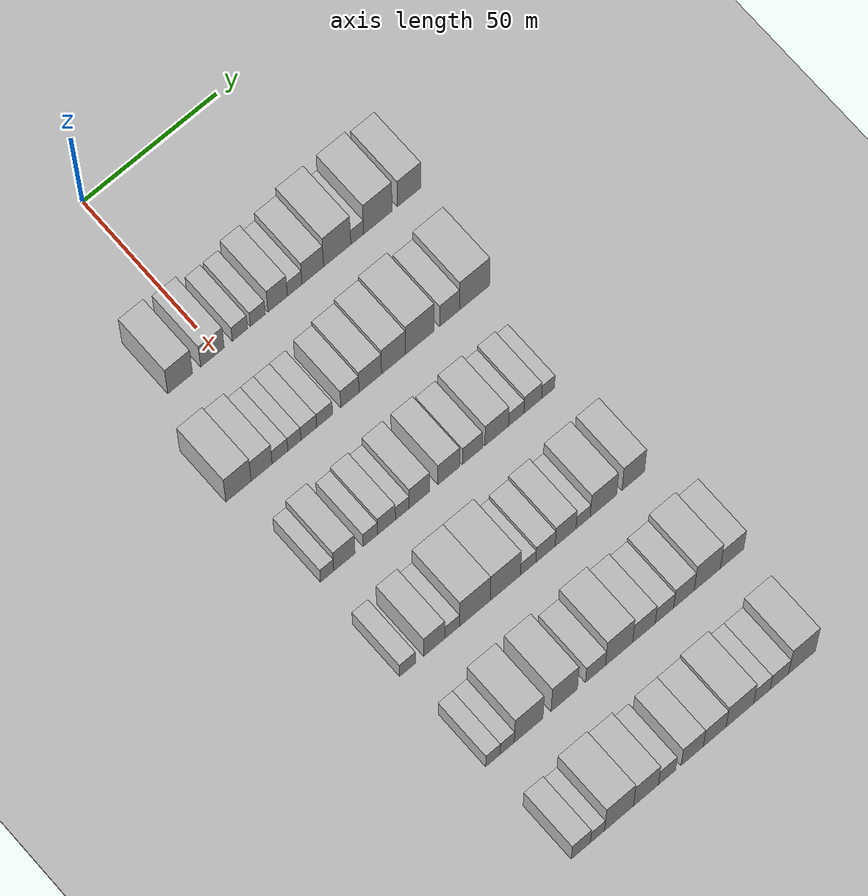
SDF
<sdf version="1.6">
 <world name="default">
  <include><name>ground_plane_1</name><uri>model://HANNAS_ground_plane</uri></include>
  <include>
   <name>ground_plane_2</name>
   <uri>model://HANNAS_ground_plane</uri>
   <pose>100 0 0  0 0 0</pose>
  </include>
  <model name="building_55">
   <static>1</static>
   <pose>50.0000 -14.3237 0 0.000000 0.000000 0.000000</pose>
   <link name="link">
    <pose>0 0 10.50 0 0 0</pose>
    <collision name="collision"><geometry><box><size>20.0000 9.1126 21.0000</size></box></geometry></collision>
    <visual name="visual">
     <cast_shadows>0</cast_shadows>
     <geometry><box><size>20.0000 9.1126 21.0000</size></box></geometry>
     <material>
      <script>
       <uri>model://HANNAS_wall/materials/scripts</uri>
       <uri>model://HANNAS_wall/materials/textures</uri>
       <name>vrc/HANNAS_wall</name>
      </script>
     </material>
    </visual>
   </link>
  </model>
  <model name="building_56">
   <static>1</static>
   <pose>50.0000 -2.4237 0 0.000000 0.000000 0.000000</pose>
   <link name="link">
    <pose>0 0 9.00 0 0 0</pose>
    <collision name="collision"><geometry><box><size>20.0000 8.6875 18.0000</size></box></geometry></collision>
    <visual name="visual">
     <cast_shadows>0</cast_shadows>
     <geometry><box><size>20.0000 8.6875 18.0000</size></box></geometry>
     <material>
      <script>
       <uri>model://HANNAS_wall/materials/scripts</uri>
       <uri>model://HANNAS_wall/materials/textures</uri>
       <name>vrc/HANNAS_wall</name>
      </script>
     </material>
    </visual>
   </link>
  </model>
  <model name="building_57">
   <static>1</static>
   <pose>50.0000 7.7474 0 0.000000 0.000000 0.000000</pose>
   <link name="link">
    <pose>0 0 6.00 0 0 0</pose>
    <collision name="collision"><geometry><box><size>20.0000 5.6546 12.0000</size></box></geometry></collision>
    <visual name="visual">
     <cast_shadows>0</cast_shadows>
     <geometry><box><size>20.0000 5.6546 12.0000</size></box></geometry>
     <material>
      <script>
       <uri>model://HANNAS_wall/materials/scripts</uri>
       <uri>model://HANNAS_wall/materials/textures</uri>
       <name>vrc/HANNAS_wall</name>
      </script>
     </material>
    </visual>
   </link>
  </model>
  <model name="building_58">
   <static>1</static>
   <pose>50.0000 14.3402 0 0.000000 0.000000 0.000000</pose>
   <link name="link">
    <pose>0 0 6.00 0 0 0</pose>
    <collision name="collision"><geometry><box><size>20.0000 5.5309 12.0000</size></box></geometry></collision>
    <visual name="visual">
     <cast_shadows>0</cast_shadows>
     <geometry><box><size>20.0000 5.5309 12.0000</size></box></geometry>
     <material>
      <script>
       <uri>model://HANNAS_wall/materials/scripts</uri>
       <uri>model://HANNAS_wall/materials/textures</uri>
       <name>vrc/HANNAS_wall</name>
      </script>
     </material>
    </visual>
   </link>
  </model>
  <model name="building_59">
   <static>1</static>
   <pose>50.0000 21.7077 0 0.000000 0.000000 0.000000</pose>
   <link name="link">
    <pose>0 0 9.00 0 0 0</pose>
    <collision name="collision"><geometry><box><size>20.0000 7.2041 18.0000</size></box></geometry></collision>
    <visual name="visual">
     <cast_shadows>0</cast_shadows>
     <geometry><box><size>20.0000 7.2041 18.0000</size></box></geometry>
     <material>
      <script>
       <uri>model://HANNAS_wall/materials/scripts</uri>
       <uri>model://HANNAS_wall/materials/textures</uri>
       <name>vrc/HANNAS_wall</name>
      </script>
     </material>
    </visual>
   </link>
  </model>
  <model name="building_60">
   <static>1</static>
   <pose>50.0000 28.0232 0 0.000000 0.000000 0.000000</pose>
   <link name="link">
    <pose>0 0 6.00 0 0 0</pose>
    <collision name="collision"><geometry><box><size>20.0000 5.4269 12.0000</size></box></geometry></collision>
    <visual name="visual">
     <cast_shadows>0</cast_shadows>
     <geometry><box><size>20.0000 5.4269 12.0000</size></box></geometry>
     <material>
      <script>
       <uri>model://HANNAS_wall/materials/scripts</uri>
       <uri>model://HANNAS_wall/materials/textures</uri>
       <name>vrc/HANNAS_wall</name>
      </script>
     </material>
    </visual>
   </link>
  </model>
  <model name="building_61">
   <static>1</static>
   <pose>50.0000 34.7626 0 0.000000 0.000000 0.000000</pose>
   <link name="link">
    <pose>0 0 9.00 0 0 0</pose>
    <collision name="collision"><geometry><box><size>20.0000 8.0518 18.0000</size></box></geometry></collision>
    <visual name="visual">
     <cast_shadows>0</cast_shadows>
     <geometry><box><size>20.0000 8.0518 18.0000</size></box></geometry>
     <material>
      <script>
       <uri>model://HANNAS_wall/materials/scripts</uri>
       <uri>model://HANNAS_wall/materials/textures</uri>
       <name>vrc/HANNAS_wall</name>
      </script>
     </material>
    </visual>
   </link>
  </model>
  <model name="building_62">
   <static>1</static>
   <pose>50.0000 43.8692 0 0.000000 0.000000 0.000000</pose>
   <link name="link">
    <pose>0 0 12.00 0 0 0</pose>
    <collision name="collision"><geometry><box><size>20.0000 10.1613 24.0000</size></box></geometry></collision>
    <visual name="visual">
     <cast_shadows>0</cast_shadows>
     <geometry><box><size>20.0000 10.1613 24.0000</size></box></geometry>
     <material>
      <script>
       <uri>model://HANNAS_wall/materials/scripts</uri>
       <uri>model://HANNAS_wall/materials/textures</uri>
       <name>vrc/HANNAS_wall</name>
      </script>
     </material>
    </visual>
   </link>
  </model>
  <model name="building_63">
   <static>1</static>
   <pose>50.0000 51.3525 0 0.000000 0.000000 0.000000</pose>
   <link name="link">
    <pose>0 0 6.00 0 0 0</pose>
    <collision name="collision"><geometry><box><size>20.0000 4.8053 12.0000</size></box></geometry></collision>
    <visual name="visual">
     <cast_shadows>0</cast_shadows>
     <geometry><box><size>20.0000 4.8053 12.0000</size></box></geometry>
     <material>
      <script>
       <uri>model://HANNAS_wall/materials/scripts</uri>
       <uri>model://HANNAS_wall/materials/textures</uri>
       <name>vrc/HANNAS_wall</name>
      </script>
     </material>
    </visual>
   </link>
  </model>
  <model name="building_64">
   <static>1</static>
   <pose>50.0000 59.0838 0 0.000000 0.000000 0.000000</pose>
   <link name="link">
    <pose>0 0 12.00 0 0 0</pose>
    <collision name="collision"><geometry><box><size>20.0000 10.6574 24.0000</size></box></geometry></collision>
    <visual name="visual">
     <cast_shadows>0</cast_shadows>
     <geometry><box><size>20.0000 10.6574 24.0000</size></box></geometry>
     <material>
      <script>
       <uri>model://HANNAS_wall/materials/scripts</uri>
       <uri>model://HANNAS_wall/materials/textures</uri>
       <name>vrc/HANNAS_wall</name>
      </script>
     </material>
    </visual>
   </link>
  </model>
  <model name="building_65">
   <static>1</static>
   <pose>50.0000 70.8415 0 0.000000 0.000000 0.000000</pose>
   <link name="link">
    <pose>0 0 10.50 0 0 0</pose>
    <collision name="collision"><geometry><box><size>20.0000 8.8580 21.0000</size></box></geometry></collision>
    <visual name="visual">
     <cast_shadows>0</cast_shadows>
     <geometry><box><size>20.0000 8.8580 21.0000</size></box></geometry>
     <material>
      <script>
       <uri>model://HANNAS_wall/materials/scripts</uri>
       <uri>model://HANNAS_wall/materials/textures</uri>
       <name>vrc/HANNAS_wall</name>
      </script>
     </material>
    </visual>
   </link>
  </model>
  <model name="building_180">
   <static>1</static>
   <pose>85.0000 -22.5169 0 0.000000 0.000000 0.000000</pose>
   <link name="link">
    <pose>0 0 10.50 0 0 0</pose>
    <collision name="collision"><geometry><box><size>20.0000 9.2628 21.0000</size></box></geometry></collision>
    <visual name="visual">
     <cast_shadows>0</cast_shadows>
     <geometry><box><size>20.0000 9.2628 21.0000</size></box></geometry>
     <material>
      <script>
       <uri>model://HANNAS_wall/materials/scripts</uri>
       <uri>model://HANNAS_wall/materials/textures</uri>
       <name>vrc/HANNAS_wall</name>
      </script>
     </material>
    </visual>
   </link>
  </model>
  <model name="building_181">
   <static>1</static>
   <pose>85.0000 -14.0218 0 0.000000 0.000000 0.000000</pose>
   <link name="link">
    <pose>0 0 9.00 0 0 0</pose>
    <collision name="collision"><geometry><box><size>20.0000 7.7274 18.0000</size></box></geometry></collision>
    <visual name="visual">
     <cast_shadows>0</cast_shadows>
     <geometry><box><size>20.0000 7.7274 18.0000</size></box></geometry>
     <material>
      <script>
       <uri>model://HANNAS_wall/materials/scripts</uri>
       <uri>model://HANNAS_wall/materials/textures</uri>
       <name>vrc/HANNAS_wall</name>
      </script>
     </material>
    </visual>
   </link>
  </model>
  <model name="building_182">
   <static>1</static>
   <pose>85.0000 -7.2518 0 0.000000 0.000000 0.000000</pose>
   <link name="link">
    <pose>0 0 6.00 0 0 0</pose>
    <collision name="collision"><geometry><box><size>20.0000 5.8126 12.0000</size></box></geometry></collision>
    <visual name="visual">
     <cast_shadows>0</cast_shadows>
     <geometry><box><size>20.0000 5.8126 12.0000</size></box></geometry>
     <material>
      <script>
       <uri>model://HANNAS_wall/materials/scripts</uri>
       <uri>model://HANNAS_wall/materials/textures</uri>
       <name>vrc/HANNAS_wall</name>
      </script>
     </material>
    </visual>
   </link>
  </model>
  <model name="building_183">
   <static>1</static>
   <pose>85.0000 -1.9382 0 0.000000 0.000000 0.000000</pose>
   <link name="link">
    <pose>0 0 6.00 0 0 0</pose>
    <collision name="collision"><geometry><box><size>20.0000 4.8145 12.0000</size></box></geometry></collision>
    <visual name="visual">
     <cast_shadows>0</cast_shadows>
     <geometry><box><size>20.0000 4.8145 12.0000</size></box></geometry>
     <material>
      <script>
       <uri>model://HANNAS_wall/materials/scripts</uri>
       <uri>model://HANNAS_wall/materials/textures</uri>
       <name>vrc/HANNAS_wall</name>
      </script>
     </material>
    </visual>
   </link>
  </model>
  <model name="building_184">
   <static>1</static>
   <pose>85.0000 3.3600 0 0.000000 0.000000 0.000000</pose>
   <link name="link">
    <pose>0 0 6.00 0 0 0</pose>
    <collision name="collision"><geometry><box><size>20.0000 5.7819 12.0000</size></box></geometry></collision>
    <visual name="visual">
     <cast_shadows>0</cast_shadows>
     <geometry><box><size>20.0000 5.7819 12.0000</size></box></geometry>
     <material>
      <script>
       <uri>model://HANNAS_wall/materials/scripts</uri>
       <uri>model://HANNAS_wall/materials/textures</uri>
       <name>vrc/HANNAS_wall</name>
      </script>
     </material>
    </visual>
   </link>
  </model>
  <model name="building_185">
   <static>1</static>
   <pose>85.0000 9.1967 0 0.000000 0.000000 0.000000</pose>
   <link name="link">
    <pose>0 0 6.00 0 0 0</pose>
    <collision name="collision"><geometry><box><size>20.0000 5.8915 12.0000</size></box></geometry></collision>
    <visual name="visual">
     <cast_shadows>0</cast_shadows>
     <geometry><box><size>20.0000 5.8915 12.0000</size></box></geometry>
     <material>
      <script>
       <uri>model://HANNAS_wall/materials/scripts</uri>
       <uri>model://HANNAS_wall/materials/textures</uri>
       <name>vrc/HANNAS_wall</name>
      </script>
     </material>
    </visual>
   </link>
  </model>
  <model name="building_186">
   <static>1</static>
   <pose>85.0000 18.5399 0 0.000000 0.000000 0.000000</pose>
   <link name="link">
    <pose>0 0 7.50 0 0 0</pose>
    <collision name="collision"><geometry><box><size>20.0000 6.7949 15.0000</size></box></geometry></collision>
    <visual name="visual">
     <cast_shadows>0</cast_shadows>
     <geometry><box><size>20.0000 6.7949 15.0000</size></box></geometry>
     <material>
      <script>
       <uri>model://HANNAS_wall/materials/scripts</uri>
       <uri>model://HANNAS_wall/materials/textures</uri>
       <name>vrc/HANNAS_wall</name>
      </script>
     </material>
    </visual>
   </link>
  </model>
  <model name="building_187">
   <static>1</static>
   <pose>85.0000 26.1134 0 0.000000 0.000000 0.000000</pose>
   <link name="link">
    <pose>0 0 9.00 0 0 0</pose>
    <collision name="collision"><geometry><box><size>20.0000 8.3521 18.0000</size></box></geometry></collision>
    <visual name="visual">
     <cast_shadows>0</cast_shadows>
     <geometry><box><size>20.0000 8.3521 18.0000</size></box></geometry>
     <material>
      <script>
       <uri>model://HANNAS_wall/materials/scripts</uri>
       <uri>model://HANNAS_wall/materials/textures</uri>
       <name>vrc/HANNAS_wall</name>
      </script>
     </material>
    </visual>
   </link>
  </model>
  <model name="building_188">
   <static>1</static>
   <pose>85.0000 34.7347 0 0.000000 0.000000 0.000000</pose>
   <link name="link">
    <pose>0 0 10.50 0 0 0</pose>
    <collision name="collision"><geometry><box><size>20.0000 8.8904 21.0000</size></box></geometry></collision>
    <visual name="visual">
     <cast_shadows>0</cast_shadows>
     <geometry><box><size>20.0000 8.8904 21.0000</size></box></geometry>
     <material>
      <script>
       <uri>model://HANNAS_wall/materials/scripts</uri>
       <uri>model://HANNAS_wall/materials/textures</uri>
       <name>vrc/HANNAS_wall</name>
      </script>
     </material>
    </visual>
   </link>
  </model>
  <model name="building_189">
   <static>1</static>
   <pose>85.0000 44.5310 0 0.000000 0.000000 0.000000</pose>
   <link name="link">
    <pose>0 0 12.00 0 0 0</pose>
    <collision name="collision"><geometry><box><size>20.0000 10.7021 24.0000</size></box></geometry></collision>
    <visual name="visual">
     <cast_shadows>0</cast_shadows>
     <geometry><box><size>20.0000 10.7021 24.0000</size></box></geometry>
     <material>
      <script>
       <uri>model://HANNAS_wall/materials/scripts</uri>
       <uri>model://HANNAS_wall/materials/textures</uri>
       <name>vrc/HANNAS_wall</name>
      </script>
     </material>
    </visual>
   </link>
  </model>
  <model name="building_190">
   <static>1</static>
   <pose>85.0000 55.5801 0 0.000000 0.000000 0.000000</pose>
   <link name="link">
    <pose>0 0 9.00 0 0 0</pose>
    <collision name="collision"><geometry><box><size>20.0000 7.3961 18.0000</size></box></geometry></collision>
    <visual name="visual">
     <cast_shadows>0</cast_shadows>
     <geometry><box><size>20.0000 7.3961 18.0000</size></box></geometry>
     <material>
      <script>
       <uri>model://HANNAS_wall/materials/scripts</uri>
       <uri>model://HANNAS_wall/materials/textures</uri>
       <name>vrc/HANNAS_wall</name>
      </script>
     </material>
    </visual>
   </link>
  </model>
  <model name="building_191">
   <static>1</static>
   <pose>85.0000 64.9095 0 0.000000 0.000000 0.000000</pose>
   <link name="link">
    <pose>0 0 12.00 0 0 0</pose>
    <collision name="collision"><geometry><box><size>20.0000 11.2628 24.0000</size></box></geometry></collision>
    <visual name="visual">
     <cast_shadows>0</cast_shadows>
     <geometry><box><size>20.0000 11.2628 24.0000</size></box></geometry>
     <material>
      <script>
       <uri>model://HANNAS_wall/materials/scripts</uri>
       <uri>model://HANNAS_wall/materials/textures</uri>
       <name>vrc/HANNAS_wall</name>
      </script>
     </material>
    </visual>
   </link>
  </model>
  <model name="building_308">
   <static>1</static>
   <pose>120.0000 -19.8995 0 0.000000 0.000000 0.000000</pose>
   <link name="link">
    <pose>0 0 6.00 0 0 0</pose>
    <collision name="collision"><geometry><box><size>20.0000 4.8841 12.0000</size></box></geometry></collision>
    <visual name="visual">
     <cast_shadows>0</cast_shadows>
     <geometry><box><size>20.0000 4.8841 12.0000</size></box></geometry>
     <material>
      <script>
       <uri>model://HANNAS_wall/materials/scripts</uri>
       <uri>model://HANNAS_wall/materials/textures</uri>
       <name>vrc/HANNAS_wall</name>
      </script>
     </material>
    </visual>
   </link>
  </model>
  <model name="building_309">
   <static>1</static>
   <pose>120.0000 -13.5665 0 0.000000 0.000000 0.000000</pose>
   <link name="link">
    <pose>0 0 9.00 0 0 0</pose>
    <collision name="collision"><geometry><box><size>20.0000 7.7819 18.0000</size></box></geometry></collision>
    <visual name="visual">
     <cast_shadows>0</cast_shadows>
     <geometry><box><size>20.0000 7.7819 18.0000</size></box></geometry>
     <material>
      <script>
       <uri>model://HANNAS_wall/materials/scripts</uri>
       <uri>model://HANNAS_wall/materials/textures</uri>
       <name>vrc/HANNAS_wall</name>
      </script>
     </material>
    </visual>
   </link>
  </model>
  <model name="building_310">
   <static>1</static>
   <pose>120.0000 -4.0090 0 0.000000 0.000000 0.000000</pose>
   <link name="link">
    <pose>0 0 6.00 0 0 0</pose>
    <collision name="collision"><geometry><box><size>20.0000 5.3330 12.0000</size></box></geometry></collision>
    <visual name="visual">
     <cast_shadows>0</cast_shadows>
     <geometry><box><size>20.0000 5.3330 12.0000</size></box></geometry>
     <material>
      <script>
       <uri>model://HANNAS_wall/materials/scripts</uri>
       <uri>model://HANNAS_wall/materials/textures</uri>
       <name>vrc/HANNAS_wall</name>
      </script>
     </material>
    </visual>
   </link>
  </model>
  <model name="building_311">
   <static>1</static>
   <pose>120.0000 1.9517 0 0.000000 0.000000 0.000000</pose>
   <link name="link">
    <pose>0 0 7.50 0 0 0</pose>
    <collision name="collision"><geometry><box><size>20.0000 6.5883 15.0000</size></box></geometry></collision>
    <visual name="visual">
     <cast_shadows>0</cast_shadows>
     <geometry><box><size>20.0000 6.5883 15.0000</size></box></geometry>
     <material>
      <script>
       <uri>model://HANNAS_wall/materials/scripts</uri>
       <uri>model://HANNAS_wall/materials/textures</uri>
       <name>vrc/HANNAS_wall</name>
      </script>
     </material>
    </visual>
   </link>
  </model>
  <model name="building_312">
   <static>1</static>
   <pose>120.0000 7.7840 0 0.000000 0.000000 0.000000</pose>
   <link name="link">
    <pose>0 0 6.00 0 0 0</pose>
    <collision name="collision"><geometry><box><size>20.0000 5.0762 12.0000</size></box></geometry></collision>
    <visual name="visual">
     <cast_shadows>0</cast_shadows>
     <geometry><box><size>20.0000 5.0762 12.0000</size></box></geometry>
     <material>
      <script>
       <uri>model://HANNAS_wall/materials/scripts</uri>
       <uri>model://HANNAS_wall/materials/textures</uri>
       <name>vrc/HANNAS_wall</name>
      </script>
     </material>
    </visual>
   </link>
  </model>
  <model name="building_313">
   <static>1</static>
   <pose>120.0000 14.1157 0 0.000000 0.000000 0.000000</pose>
   <link name="link">
    <pose>0 0 9.00 0 0 0</pose>
    <collision name="collision"><geometry><box><size>20.0000 7.5874 18.0000</size></box></geometry></collision>
    <visual name="visual">
     <cast_shadows>0</cast_shadows>
     <geometry><box><size>20.0000 7.5874 18.0000</size></box></geometry>
     <material>
      <script>
       <uri>model://HANNAS_wall/materials/scripts</uri>
       <uri>model://HANNAS_wall/materials/textures</uri>
       <name>vrc/HANNAS_wall</name>
      </script>
     </material>
    </visual>
   </link>
  </model>
  <model name="building_314">
   <static>1</static>
   <pose>120.0000 24.9161 0 0.000000 0.000000 0.000000</pose>
   <link name="link">
    <pose>0 0 9.00 0 0 0</pose>
    <collision name="collision"><geometry><box><size>20.0000 8.0134 18.0000</size></box></geometry></collision>
    <visual name="visual">
     <cast_shadows>0</cast_shadows>
     <geometry><box><size>20.0000 8.0134 18.0000</size></box></geometry>
     <material>
      <script>
       <uri>model://HANNAS_wall/materials/scripts</uri>
       <uri>model://HANNAS_wall/materials/textures</uri>
       <name>vrc/HANNAS_wall</name>
      </script>
     </material>
    </visual>
   </link>
  </model>
  <model name="building_315">
   <static>1</static>
   <pose>120.0000 33.5996 0 0.000000 0.000000 0.000000</pose>
   <link name="link">
    <pose>0 0 7.50 0 0 0</pose>
    <collision name="collision"><geometry><box><size>20.0000 7.3537 15.0000</size></box></geometry></collision>
    <visual name="visual">
     <cast_shadows>0</cast_shadows>
     <geometry><box><size>20.0000 7.3537 15.0000</size></box></geometry>
     <material>
      <script>
       <uri>model://HANNAS_wall/materials/scripts</uri>
       <uri>model://HANNAS_wall/materials/textures</uri>
       <name>vrc/HANNAS_wall</name>
      </script>
     </material>
    </visual>
   </link>
  </model>
  <model name="building_316">
   <static>1</static>
   <pose>120.0000 42.6816 0 0.000000 0.000000 0.000000</pose>
   <link name="link">
    <pose>0 0 9.00 0 0 0</pose>
    <collision name="collision"><geometry><box><size>20.0000 8.8103 18.0000</size></box></geometry></collision>
    <visual name="visual">
     <cast_shadows>0</cast_shadows>
     <geometry><box><size>20.0000 8.8103 18.0000</size></box></geometry>
     <material>
      <script>
       <uri>model://HANNAS_wall/materials/scripts</uri>
       <uri>model://HANNAS_wall/materials/textures</uri>
       <name>vrc/HANNAS_wall</name>
      </script>
     </material>
    </visual>
   </link>
  </model>
  <model name="building_317">
   <static>1</static>
   <pose>120.0000 49.9662 0 0.000000 0.000000 0.000000</pose>
   <link name="link">
    <pose>0 0 6.00 0 0 0</pose>
    <collision name="collision"><geometry><box><size>20.0000 5.7590 12.0000</size></box></geometry></collision>
    <visual name="visual">
     <cast_shadows>0</cast_shadows>
     <geometry><box><size>20.0000 5.7590 12.0000</size></box></geometry>
     <material>
      <script>
       <uri>model://HANNAS_wall/materials/scripts</uri>
       <uri>model://HANNAS_wall/materials/textures</uri>
       <name>vrc/HANNAS_wall</name>
      </script>
     </material>
    </visual>
   </link>
  </model>
  <model name="building_318">
   <static>1</static>
   <pose>120.0000 56.1377 0 0.000000 0.000000 0.000000</pose>
   <link name="link">
    <pose>0 0 7.50 0 0 0</pose>
    <collision name="collision"><geometry><box><size>20.0000 6.5839 15.0000</size></box></geometry></collision>
    <visual name="visual">
     <cast_shadows>0</cast_shadows>
     <geometry><box><size>20.0000 6.5839 15.0000</size></box></geometry>
     <material>
      <script>
       <uri>model://HANNAS_wall/materials/scripts</uri>
       <uri>model://HANNAS_wall/materials/textures</uri>
       <name>vrc/HANNAS_wall</name>
      </script>
     </material>
    </visual>
   </link>
  </model>
  <model name="building_319">
   <static>1</static>
   <pose>120.0000 61.8437 0 0.000000 0.000000 0.000000</pose>
   <link name="link">
    <pose>0 0 6.00 0 0 0</pose>
    <collision name="collision"><geometry><box><size>20.0000 4.8282 12.0000</size></box></geometry></collision>
    <visual name="visual">
     <cast_shadows>0</cast_shadows>
     <geometry><box><size>20.0000 4.8282 12.0000</size></box></geometry>
     <material>
      <script>
       <uri>model://HANNAS_wall/materials/scripts</uri>
       <uri>model://HANNAS_wall/materials/textures</uri>
       <name>vrc/HANNAS_wall</name>
      </script>
     </material>
    </visual>
   </link>
  </model>
  <model name="building_430">
   <static>1</static>
   <pose>155.0000 -20.5904 0 0.000000 0.000000 0.000000</pose>
   <link name="link">
    <pose>0 0 6.00 0 0 0</pose>
    <collision name="collision"><geometry><box><size>20.0000 5.8227 12.0000</size></box></geometry></collision>
    <visual name="visual">
     <cast_shadows>0</cast_shadows>
     <geometry><box><size>20.0000 5.8227 12.0000</size></box></geometry>
     <material>
      <script>
       <uri>model://HANNAS_wall/materials/scripts</uri>
       <uri>model://HANNAS_wall/materials/textures</uri>
       <name>vrc/HANNAS_wall</name>
      </script>
     </material>
    </visual>
   </link>
  </model>
  <model name="building_431">
   <static>1</static>
   <pose>155.0000 -10.8334 0 0.000000 0.000000 0.000000</pose>
   <link name="link">
    <pose>0 0 9.00 0 0 0</pose>
    <collision name="collision"><geometry><box><size>20.0000 7.6912 18.0000</size></box></geometry></collision>
    <visual name="visual">
     <cast_shadows>0</cast_shadows>
     <geometry><box><size>20.0000 7.6912 18.0000</size></box></geometry>
     <material>
      <script>
       <uri>model://HANNAS_wall/materials/scripts</uri>
       <uri>model://HANNAS_wall/materials/textures</uri>
       <name>vrc/HANNAS_wall</name>
      </script>
     </material>
    </visual>
   </link>
  </model>
  <model name="building_432">
   <static>1</static>
   <pose>155.0000 -4.2720 0 0.000000 0.000000 0.000000</pose>
   <link name="link">
    <pose>0 0 6.00 0 0 0</pose>
    <collision name="collision"><geometry><box><size>20.0000 5.4316 12.0000</size></box></geometry></collision>
    <visual name="visual">
     <cast_shadows>0</cast_shadows>
     <geometry><box><size>20.0000 5.4316 12.0000</size></box></geometry>
     <material>
      <script>
       <uri>model://HANNAS_wall/materials/scripts</uri>
       <uri>model://HANNAS_wall/materials/textures</uri>
       <name>vrc/HANNAS_wall</name>
      </script>
     </material>
    </visual>
   </link>
  </model>
  <model name="building_433">
   <static>1</static>
   <pose>155.0000 4.1044 0 0.000000 0.000000 0.000000</pose>
   <link name="link">
    <pose>0 0 12.00 0 0 0</pose>
    <collision name="collision"><geometry><box><size>20.0000 11.3212 24.0000</size></box></geometry></collision>
    <visual name="visual">
     <cast_shadows>0</cast_shadows>
     <geometry><box><size>20.0000 11.3212 24.0000</size></box></geometry>
     <material>
      <script>
       <uri>model://HANNAS_wall/materials/scripts</uri>
       <uri>model://HANNAS_wall/materials/textures</uri>
       <name>vrc/HANNAS_wall</name>
      </script>
     </material>
    </visual>
   </link>
  </model>
  <model name="building_434">
   <static>1</static>
   <pose>155.0000 15.3305 0 0.000000 0.000000 0.000000</pose>
   <link name="link">
    <pose>0 0 12.00 0 0 0</pose>
    <collision name="collision"><geometry><box><size>20.0000 11.1311 24.0000</size></box></geometry></collision>
    <visual name="visual">
     <cast_shadows>0</cast_shadows>
     <geometry><box><size>20.0000 11.1311 24.0000</size></box></geometry>
     <material>
      <script>
       <uri>model://HANNAS_wall/materials/scripts</uri>
       <uri>model://HANNAS_wall/materials/textures</uri>
       <name>vrc/HANNAS_wall</name>
      </script>
     </material>
    </visual>
   </link>
  </model>
  <model name="building_435">
   <static>1</static>
   <pose>155.0000 23.7311 0 0.000000 0.000000 0.000000</pose>
   <link name="link">
    <pose>0 0 6.00 0 0 0</pose>
    <collision name="collision"><geometry><box><size>20.0000 5.6700 12.0000</size></box></geometry></collision>
    <visual name="visual">
     <cast_shadows>0</cast_shadows>
     <geometry><box><size>20.0000 5.6700 12.0000</size></box></geometry>
     <material>
      <script>
       <uri>model://HANNAS_wall/materials/scripts</uri>
       <uri>model://HANNAS_wall/materials/textures</uri>
       <name>vrc/HANNAS_wall</name>
      </script>
     </material>
    </visual>
   </link>
  </model>
  <model name="building_436">
   <static>1</static>
   <pose>155.0000 30.1602 0 0.000000 0.000000 0.000000</pose>
   <link name="link">
    <pose>0 0 7.50 0 0 0</pose>
    <collision name="collision"><geometry><box><size>20.0000 7.1884 15.0000</size></box></geometry></collision>
    <visual name="visual">
     <cast_shadows>0</cast_shadows>
     <geometry><box><size>20.0000 7.1884 15.0000</size></box></geometry>
     <material>
      <script>
       <uri>model://HANNAS_wall/materials/scripts</uri>
       <uri>model://HANNAS_wall/materials/textures</uri>
       <name>vrc/HANNAS_wall</name>
      </script>
     </material>
    </visual>
   </link>
  </model>
  <model name="building_437">
   <static>1</static>
   <pose>155.0000 37.6051 0 0.000000 0.000000 0.000000</pose>
   <link name="link">
    <pose>0 0 9.00 0 0 0</pose>
    <collision name="collision"><geometry><box><size>20.0000 7.7013 18.0000</size></box></geometry></collision>
    <visual name="visual">
     <cast_shadows>0</cast_shadows>
     <geometry><box><size>20.0000 7.7013 18.0000</size></box></geometry>
     <material>
      <script>
       <uri>model://HANNAS_wall/materials/scripts</uri>
       <uri>model://HANNAS_wall/materials/textures</uri>
       <name>vrc/HANNAS_wall</name>
      </script>
     </material>
    </visual>
   </link>
  </model>
  <model name="building_438">
   <static>1</static>
   <pose>155.0000 44.1049 0 0.000000 0.000000 0.000000</pose>
   <link name="link">
    <pose>0 0 6.00 0 0 0</pose>
    <collision name="collision"><geometry><box><size>20.0000 5.2984 12.0000</size></box></geometry></collision>
    <visual name="visual">
     <cast_shadows>0</cast_shadows>
     <geometry><box><size>20.0000 5.2984 12.0000</size></box></geometry>
     <material>
      <script>
       <uri>model://HANNAS_wall/materials/scripts</uri>
       <uri>model://HANNAS_wall/materials/textures</uri>
       <name>vrc/HANNAS_wall</name>
      </script>
     </material>
    </visual>
   </link>
  </model>
  <model name="building_439">
   <static>1</static>
   <pose>155.0000 51.6730 0 0.000000 0.000000 0.000000</pose>
   <link name="link">
    <pose>0 0 10.50 0 0 0</pose>
    <collision name="collision"><geometry><box><size>20.0000 9.8377 21.0000</size></box></geometry></collision>
    <visual name="visual">
     <cast_shadows>0</cast_shadows>
     <geometry><box><size>20.0000 9.8377 21.0000</size></box></geometry>
     <material>
      <script>
       <uri>model://HANNAS_wall/materials/scripts</uri>
       <uri>model://HANNAS_wall/materials/textures</uri>
       <name>vrc/HANNAS_wall</name>
      </script>
     </material>
    </visual>
   </link>
  </model>
  <model name="building_440">
   <static>1</static>
   <pose>155.0000 62.7983 0 0.000000 0.000000 0.000000</pose>
   <link name="link">
    <pose>0 0 10.50 0 0 0</pose>
    <collision name="collision"><geometry><box><size>20.0000 8.4130 21.0000</size></box></geometry></collision>
    <visual name="visual">
     <cast_shadows>0</cast_shadows>
     <geometry><box><size>20.0000 8.4130 21.0000</size></box></geometry>
     <material>
      <script>
       <uri>model://HANNAS_wall/materials/scripts</uri>
       <uri>model://HANNAS_wall/materials/textures</uri>
       <name>vrc/HANNAS_wall</name>
      </script>
     </material>
    </visual>
   </link>
  </model>
  <model name="building_561">
   <static>1</static>
   <pose>190.0000 -19.8078 0 0.000000 0.000000 0.000000</pose>
   <link name="link">
    <pose>0 0 6.00 0 0 0</pose>
    <collision name="collision"><geometry><box><size>20.0000 5.3019 12.0000</size></box></geometry></collision>
    <visual name="visual">
     <cast_shadows>0</cast_shadows>
     <geometry><box><size>20.0000 5.3019 12.0000</size></box></geometry>
     <material>
      <script>
       <uri>model://HANNAS_wall/materials/scripts</uri>
       <uri>model://HANNAS_wall/materials/textures</uri>
       <name>vrc/HANNAS_wall</name>
      </script>
     </material>
    </visual>
   </link>
  </model>
  <model name="building_562">
   <static>1</static>
   <pose>190.0000 -14.5783 0 0.000000 0.000000 0.000000</pose>
   <link name="link">
    <pose>0 0 6.00 0 0 0</pose>
    <collision name="collision"><geometry><box><size>20.0000 5.1570 12.0000</size></box></geometry></collision>
    <visual name="visual">
     <cast_shadows>0</cast_shadows>
     <geometry><box><size>20.0000 5.1570 12.0000</size></box></geometry>
     <material>
      <script>
       <uri>model://HANNAS_wall/materials/scripts</uri>
       <uri>model://HANNAS_wall/materials/textures</uri>
       <name>vrc/HANNAS_wall</name>
      </script>
     </material>
    </visual>
   </link>
  </model>
  <model name="building_563">
   <static>1</static>
   <pose>190.0000 -6.7653 0 0.000000 0.000000 0.000000</pose>
   <link name="link">
    <pose>0 0 12.00 0 0 0</pose>
    <collision name="collision"><geometry><box><size>20.0000 10.4690 24.0000</size></box></geometry></collision>
    <visual name="visual">
     <cast_shadows>0</cast_shadows>
     <geometry><box><size>20.0000 10.4690 24.0000</size></box></geometry>
     <material>
      <script>
       <uri>model://HANNAS_wall/materials/scripts</uri>
       <uri>model://HANNAS_wall/materials/textures</uri>
       <name>vrc/HANNAS_wall</name>
      </script>
     </material>
    </visual>
   </link>
  </model>
  <model name="building_564">
   <static>1</static>
   <pose>190.0000 6.3127 0 0.000000 0.000000 0.000000</pose>
   <link name="link">
    <pose>0 0 12.00 0 0 0</pose>
    <collision name="collision"><geometry><box><size>20.0000 9.6870 24.0000</size></box></geometry></collision>
    <visual name="visual">
     <cast_shadows>0</cast_shadows>
     <geometry><box><size>20.0000 9.6870 24.0000</size></box></geometry>
     <material>
      <script>
       <uri>model://HANNAS_wall/materials/scripts</uri>
       <uri>model://HANNAS_wall/materials/textures</uri>
       <name>vrc/HANNAS_wall</name>
      </script>
     </material>
    </visual>
   </link>
  </model>
  <model name="building_565">
   <static>1</static>
   <pose>190.0000 17.8263 0 0.000000 0.000000 0.000000</pose>
   <link name="link">
    <pose>0 0 7.50 0 0 0</pose>
    <collision name="collision"><geometry><box><size>20.0000 7.3402 15.0000</size></box></geometry></collision>
    <visual name="visual">
     <cast_shadows>0</cast_shadows>
     <geometry><box><size>20.0000 7.3402 15.0000</size></box></geometry>
     <material>
      <script>
       <uri>model://HANNAS_wall/materials/scripts</uri>
       <uri>model://HANNAS_wall/materials/textures</uri>
       <name>vrc/HANNAS_wall</name>
      </script>
     </material>
    </visual>
   </link>
  </model>
  <model name="building_566">
   <static>1</static>
   <pose>190.0000 26.5116 0 0.000000 0.000000 0.000000</pose>
   <link name="link">
    <pose>0 0 12.00 0 0 0</pose>
    <collision name="collision"><geometry><box><size>20.0000 10.0303 24.0000</size></box></geometry></collision>
    <visual name="visual">
     <cast_shadows>0</cast_shadows>
     <geometry><box><size>20.0000 10.0303 24.0000</size></box></geometry>
     <material>
      <script>
       <uri>model://HANNAS_wall/materials/scripts</uri>
       <uri>model://HANNAS_wall/materials/textures</uri>
       <name>vrc/HANNAS_wall</name>
      </script>
     </material>
    </visual>
   </link>
  </model>
  <model name="building_567">
   <static>1</static>
   <pose>190.0000 35.7202 0 0.000000 0.000000 0.000000</pose>
   <link name="link">
    <pose>0 0 9.00 0 0 0</pose>
    <collision name="collision"><geometry><box><size>20.0000 8.3870 18.0000</size></box></geometry></collision>
    <visual name="visual">
     <cast_shadows>0</cast_shadows>
     <geometry><box><size>20.0000 8.3870 18.0000</size></box></geometry>
     <material>
      <script>
       <uri>model://HANNAS_wall/materials/scripts</uri>
       <uri>model://HANNAS_wall/materials/textures</uri>
       <name>vrc/HANNAS_wall</name>
      </script>
     </material>
    </visual>
   </link>
  </model>
  <model name="building_568">
   <static>1</static>
   <pose>190.0000 43.3230 0 0.000000 0.000000 0.000000</pose>
   <link name="link">
    <pose>0 0 7.50 0 0 0</pose>
    <collision name="collision"><geometry><box><size>20.0000 6.8186 15.0000</size></box></geometry></collision>
    <visual name="visual">
     <cast_shadows>0</cast_shadows>
     <geometry><box><size>20.0000 6.8186 15.0000</size></box></geometry>
     <material>
      <script>
       <uri>model://HANNAS_wall/materials/scripts</uri>
       <uri>model://HANNAS_wall/materials/textures</uri>
       <name>vrc/HANNAS_wall</name>
      </script>
     </material>
    </visual>
   </link>
  </model>
  <model name="building_569">
   <static>1</static>
   <pose>190.0000 50.5600 0 0.000000 0.000000 0.000000</pose>
   <link name="link">
    <pose>0 0 9.00 0 0 0</pose>
    <collision name="collision"><geometry><box><size>20.0000 7.6552 18.0000</size></box></geometry></collision>
    <visual name="visual">
     <cast_shadows>0</cast_shadows>
     <geometry><box><size>20.0000 7.6552 18.0000</size></box></geometry>
     <material>
      <script>
       <uri>model://HANNAS_wall/materials/scripts</uri>
       <uri>model://HANNAS_wall/materials/textures</uri>
       <name>vrc/HANNAS_wall</name>
      </script>
     </material>
    </visual>
   </link>
  </model>
  <model name="building_570">
   <static>1</static>
   <pose>190.0000 59.2563 0 0.000000 0.000000 0.000000</pose>
   <link name="link">
    <pose>0 0 12.00 0 0 0</pose>
    <collision name="collision"><geometry><box><size>20.0000 9.7374 24.0000</size></box></geometry></collision>
    <visual name="visual">
     <cast_shadows>0</cast_shadows>
     <geometry><box><size>20.0000 9.7374 24.0000</size></box></geometry>
     <material>
      <script>
       <uri>model://HANNAS_wall/materials/scripts</uri>
       <uri>model://HANNAS_wall/materials/textures</uri>
       <name>vrc/HANNAS_wall</name>
      </script>
     </material>
    </visual>
   </link>
  </model>
  <model name="building_571">
   <static>1</static>
   <pose>190.0000 68.4965 0 0.000000 0.000000 0.000000</pose>
   <link name="link">
    <pose>0 0 9.00 0 0 0</pose>
    <collision name="collision"><geometry><box><size>20.0000 8.7431 18.0000</size></box></geometry></collision>
    <visual name="visual">
     <cast_shadows>0</cast_shadows>
     <geometry><box><size>20.0000 8.7431 18.0000</size></box></geometry>
     <material>
      <script>
       <uri>model://HANNAS_wall/materials/scripts</uri>
       <uri>model://HANNAS_wall/materials/textures</uri>
       <name>vrc/HANNAS_wall</name>
      </script>
     </material>
    </visual>
   </link>
  </model>
  <model name="building_691">
   <static>1</static>
   <pose>225.0000 -18.4007 0 0.000000 0.000000 0.000000</pose>
   <link name="link">
    <pose>0 0 7.50 0 0 0</pose>
    <collision name="collision"><geometry><box><size>20.0000 7.0129 15.0000</size></box></geometry></collision>
    <visual name="visual">
     <cast_shadows>0</cast_shadows>
     <geometry><box><size>20.0000 7.0129 15.0000</size></box></geometry>
     <material>
      <script>
       <uri>model://HANNAS_wall/materials/scripts</uri>
       <uri>model://HANNAS_wall/materials/textures</uri>
       <name>vrc/HANNAS_wall</name>
      </script>
     </material>
    </visual>
   </link>
  </model>
  <model name="building_692">
   <static>1</static>
   <pose>225.0000 -12.3354 0 0.000000 0.000000 0.000000</pose>
   <link name="link">
    <pose>0 0 6.00 0 0 0</pose>
    <collision name="collision"><geometry><box><size>20.0000 5.1178 12.0000</size></box></geometry></collision>
    <visual name="visual">
     <cast_shadows>0</cast_shadows>
     <geometry><box><size>20.0000 5.1178 12.0000</size></box></geometry>
     <material>
      <script>
       <uri>model://HANNAS_wall/materials/scripts</uri>
       <uri>model://HANNAS_wall/materials/textures</uri>
       <name>vrc/HANNAS_wall</name>
      </script>
     </material>
    </visual>
   </link>
  </model>
  <model name="building_693">
   <static>1</static>
   <pose>225.0000 -4.4749 0 0.000000 0.000000 0.000000</pose>
   <link name="link">
    <pose>0 0 12.00 0 0 0</pose>
    <collision name="collision"><geometry><box><size>20.0000 10.6031 24.0000</size></box></geometry></collision>
    <visual name="visual">
     <cast_shadows>0</cast_shadows>
     <geometry><box><size>20.0000 10.6031 24.0000</size></box></geometry>
     <material>
      <script>
       <uri>model://HANNAS_wall/materials/scripts</uri>
       <uri>model://HANNAS_wall/materials/textures</uri>
       <name>vrc/HANNAS_wall</name>
      </script>
     </material>
    </visual>
   </link>
  </model>
  <model name="building_694">
   <static>1</static>
   <pose>225.0000 5.4077 0 0.000000 0.000000 0.000000</pose>
   <link name="link">
    <pose>0 0 10.50 0 0 0</pose>
    <collision name="collision"><geometry><box><size>20.0000 9.1621 21.0000</size></box></geometry></collision>
    <visual name="visual">
     <cast_shadows>0</cast_shadows>
     <geometry><box><size>20.0000 9.1621 21.0000</size></box></geometry>
     <material>
      <script>
       <uri>model://HANNAS_wall/materials/scripts</uri>
       <uri>model://HANNAS_wall/materials/textures</uri>
       <name>vrc/HANNAS_wall</name>
      </script>
     </material>
    </visual>
   </link>
  </model>
  <model name="building_695">
   <static>1</static>
   <pose>225.0000 13.1406 0 0.000000 0.000000 0.000000</pose>
   <link name="link">
    <pose>0 0 7.50 0 0 0</pose>
    <collision name="collision"><geometry><box><size>20.0000 6.3036 15.0000</size></box></geometry></collision>
    <visual name="visual">
     <cast_shadows>0</cast_shadows>
     <geometry><box><size>20.0000 6.3036 15.0000</size></box></geometry>
     <material>
      <script>
       <uri>model://HANNAS_wall/materials/scripts</uri>
       <uri>model://HANNAS_wall/materials/textures</uri>
       <name>vrc/HANNAS_wall</name>
      </script>
     </material>
    </visual>
   </link>
  </model>
  <model name="building_696">
   <static>1</static>
   <pose>225.0000 22.4176 0 0.000000 0.000000 0.000000</pose>
   <link name="link">
    <pose>0 0 9.00 0 0 0</pose>
    <collision name="collision"><geometry><box><size>20.0000 8.2504 18.0000</size></box></geometry></collision>
    <visual name="visual">
     <cast_shadows>0</cast_shadows>
     <geometry><box><size>20.0000 8.2504 18.0000</size></box></geometry>
     <material>
      <script>
       <uri>model://HANNAS_wall/materials/scripts</uri>
       <uri>model://HANNAS_wall/materials/textures</uri>
       <name>vrc/HANNAS_wall</name>
      </script>
     </material>
    </visual>
   </link>
  </model>
  <model name="building_697">
   <static>1</static>
   <pose>225.0000 30.7197 0 0.000000 0.000000 0.000000</pose>
   <link name="link">
    <pose>0 0 9.00 0 0 0</pose>
    <collision name="collision"><geometry><box><size>20.0000 8.3539 18.0000</size></box></geometry></collision>
    <visual name="visual">
     <cast_shadows>0</cast_shadows>
     <geometry><box><size>20.0000 8.3539 18.0000</size></box></geometry>
     <material>
      <script>
       <uri>model://HANNAS_wall/materials/scripts</uri>
       <uri>model://HANNAS_wall/materials/textures</uri>
       <name>vrc/HANNAS_wall</name>
      </script>
     </material>
    </visual>
   </link>
  </model>
  <model name="building_698">
   <static>1</static>
   <pose>225.0000 40.0448 0 0.000000 0.000000 0.000000</pose>
   <link name="link">
    <pose>0 0 10.50 0 0 0</pose>
    <collision name="collision"><geometry><box><size>20.0000 10.2963 21.0000</size></box></geometry></collision>
    <visual name="visual">
     <cast_shadows>0</cast_shadows>
     <geometry><box><size>20.0000 10.2963 21.0000</size></box></geometry>
     <material>
      <script>
       <uri>model://HANNAS_wall/materials/scripts</uri>
       <uri>model://HANNAS_wall/materials/textures</uri>
       <name>vrc/HANNAS_wall</name>
      </script>
     </material>
    </visual>
   </link>
  </model>
  <model name="building_699">
   <static>1</static>
   <pose>225.0000 48.2149 0 0.000000 0.000000 0.000000</pose>
   <link name="link">
    <pose>0 0 7.50 0 0 0</pose>
    <collision name="collision"><geometry><box><size>20.0000 6.0440 15.0000</size></box></geometry></collision>
    <visual name="visual">
     <cast_shadows>0</cast_shadows>
     <geometry><box><size>20.0000 6.0440 15.0000</size></box></geometry>
     <material>
      <script>
       <uri>model://HANNAS_wall/materials/scripts</uri>
       <uri>model://HANNAS_wall/materials/textures</uri>
       <name>vrc/HANNAS_wall</name>
      </script>
     </material>
    </visual>
   </link>
  </model>
  <model name="building_700">
   <static>1</static>
   <pose>225.0000 54.6916 0 0.000000 0.000000 0.000000</pose>
   <link name="link">
    <pose>0 0 7.50 0 0 0</pose>
    <collision name="collision"><geometry><box><size>20.0000 6.9094 15.0000</size></box></geometry></collision>
    <visual name="visual">
     <cast_shadows>0</cast_shadows>
     <geometry><box><size>20.0000 6.9094 15.0000</size></box></geometry>
     <material>
      <script>
       <uri>model://HANNAS_wall/materials/scripts</uri>
       <uri>model://HANNAS_wall/materials/textures</uri>
       <name>vrc/HANNAS_wall</name>
      </script>
     </material>
    </visual>
   </link>
  </model>
  <model name="building_701">
   <static>1</static>
   <pose>225.0000 63.1267 0 0.000000 0.000000 0.000000</pose>
   <link name="link">
    <pose>0 0 12.00 0 0 0</pose>
    <collision name="collision"><geometry><box><size>20.0000 9.9608 24.0000</size></box></geometry></collision>
    <visual name="visual">
     <cast_shadows>0</cast_shadows>
     <geometry><box><size>20.0000 9.9608 24.0000</size></box></geometry>
     <material>
      <script>
       <uri>model://HANNAS_wall/materials/scripts</uri>
       <uri>model://HANNAS_wall/materials/textures</uri>
       <name>vrc/HANNAS_wall</name>
      </script>
     </material>
    </visual>
   </link>
  </model>
 </world>
</sdf>
